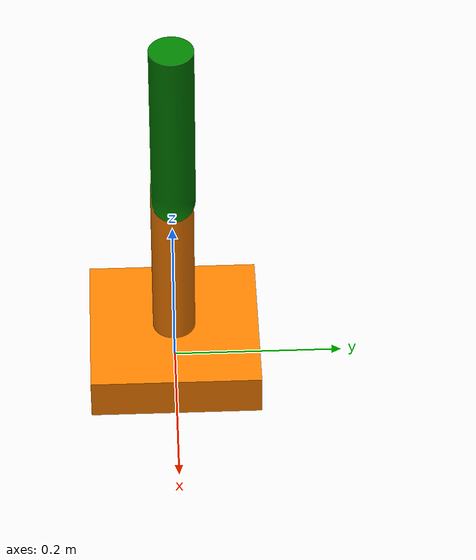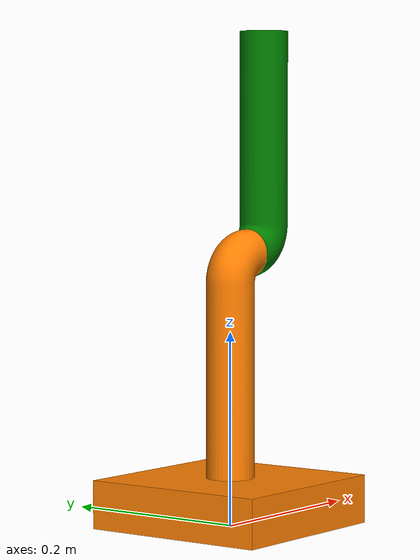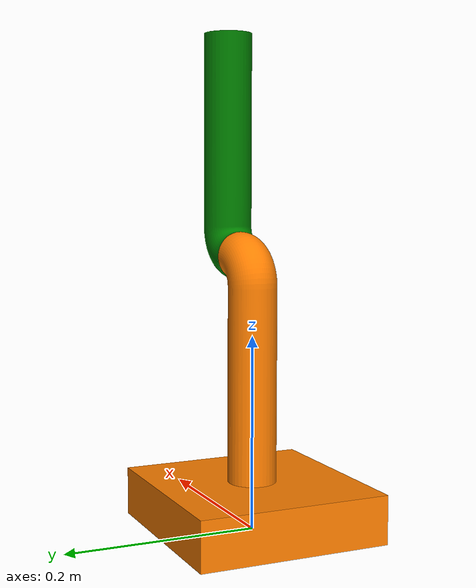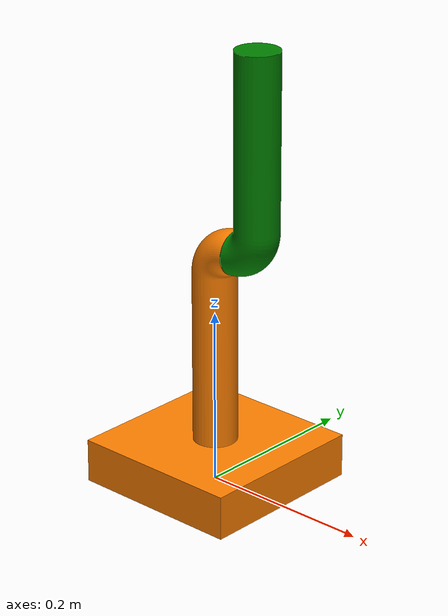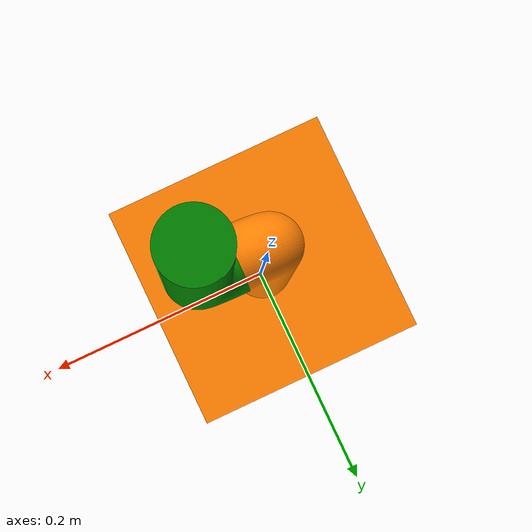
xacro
<?xml version="1.0"?>
<robot name="protobot" xmlns:xacro="http://www.ros.org/wiki/xacro">

    <xacro:arg name="is_sim" default="true"/>

    <xacro:include filename="$(find protobot_description)/urdf/common_properties.xacro"/>
    <xacro:include filename="$(find protobot_description)/urdf/structure.xacro"/>
    <xacro:include filename="$(find protobot_description)/urdf/gz.xacro"/>
    <xacro:include filename="$(find protobot_description)/urdf/control.xacro"/>

</robot>

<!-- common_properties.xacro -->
<robot xmlns:xacro="http://www.ros.org/wiki/xacro">

    <material name="blue">
        <color rgba="0 0 0.5 1" />
    </material>

    <material name="grey">
        <color rgba="0.5 0.5 0.5 1" />
    </material>

    <material name="green">
        <color rgba="0 0.5 0 1" />
    </material>

    <material name="red">
        <color rgba="1 0 0 1" />
    </material>

    <material name="orange">
        <color rgba="1 0.5 0 1" />
    </material>

    <material name="yellow">
        <color rgba="0.8 0.8 0 1" />
    </material>

    <material name="black">
        <color rgba="0 0 0 1" />
    </material>

    <xacro:macro name="box_inertia" params="m l w h xyz rpy">
        <inertial>
            <origin xyz="${xyz}" rpy="${rpy}" />
            <mass value="${m}" />
            <inertia ixx="${(m/12.0) * (h*h + l*l)}" ixy="0" ixz="0"
                iyy="${(m/12.0) * (w*w + l*l)}" iyz="0"
                izz="${(m/12.0) * (h*h + w*w)}" />
        </inertial>
    </xacro:macro>

    <xacro:macro name="cylinder_inertia" params="m r l xyz rpy">
        <inertial>
            <origin xyz="${xyz}" rpy="${rpy}" />
            <mass value="${m}" />
            <inertia ixx="${(m/12.0)*(3*r*r + l*l)}" ixy="0" ixz="0"
                iyy="${(m/12.0)*(3*r*r + l*l)}" iyz="0"
                izz="${(m/2.0)*r*r}" />
        </inertial>
    </xacro:macro>

    <xacro:macro name="sphere_inertia" params="m r xyz rpy">
        <inertial>
            <origin xyz="${xyz}" rpy="${rpy}" />
            <mass value="${m}" />
            <inertia ixx="${(2.0/5.0)*m*r*r}" ixy="0" ixz="0"
                iyy="${(2.0/5.0)*m*r*r}" iyz="0"
                izz="${(2.0/5.0)*m*r*r}" />
        </inertial>
    </xacro:macro>

</robot>

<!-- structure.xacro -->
<robot xmlns:xacro="http://www.ros.org/wiki/xacro">

    <xacro:property name="mass_base" value="1.0" />
    <xacro:property name="mass_upper" value="0.250" />

    <link name="world" />

    <link name="base_link">
        <visual>
            <origin xyz="-0.1 -0.1 0" rpy="0 0 0" />
            <geometry>
                <mesh filename="package://protobot_description/meshes/base.STL"
                    scale="0.001 0.001 0.001" />
            </geometry>
            <material name="orange" />
        </visual>
        <collision>
            <origin xyz="-0.1 -0.1 0" rpy="0 0 0" />
            <geometry>
                <mesh filename="package://protobot_description/meshes/base.STL"
                    scale="0.001 0.001 0.001" />
            </geometry>
        </collision>
        <inertial>
            <mass value="${mass_base}" />
            <inertia ixx="0.352441" ixy="0" ixz="0"
                iyy="0.352441" iyz="0"
                izz="0.703125" />
        </inertial>
    </link>

    <link name="upper_link">
        <visual>
            <origin xyz="0.055 -0.025 0.23" rpy="${pi} 0 ${pi}" />
            <geometry>
                <mesh filename="package://protobot_description/meshes/upper.STL"
                    scale="0.001 0.001 0.001" />
            </geometry>
            <material name="green" />
        </visual>
        <collision>
            <origin xyz="0.055 -0.025 0.23" rpy="${pi} 0 ${pi}" />
            <geometry>
                <mesh filename="package://protobot_description/meshes/upper.STL"
                    scale="0.001 0.001 0.001" />
            </geometry>
        </collision>
        <inertial>
            <mass value="${mass_upper}" />
            <inertia ixx="0.227504" ixy="0" ixz="0"
                iyy="0.023582" iyz="0.006557"
                izz="0.249198" />
        </inertial>
    </link>

    <joint name="world_base_joint" type="fixed">
        <origin xyz="0 0 0" rpy="0 0 0" />
        <parent link="world" />
        <child link="base_link" />
    </joint>

    <joint name="shoulder_joint" type="revolute">
        <origin xyz="0.03 0 0.28" rpy="0 0 0" />
        <parent link="base_link" />
        <child link="upper_link" />
        <axis xyz="1 0 0" />
        <limit lower="-${(3*pi)/4}" upper="${(3*pi)/4}" effort="10" velocity="1" />
    </joint>

</robot>
